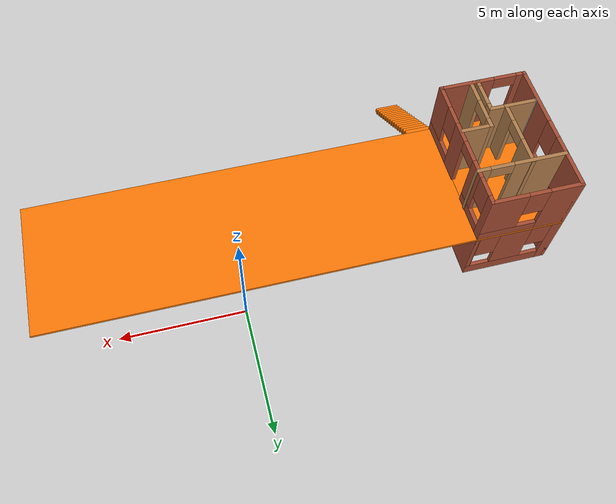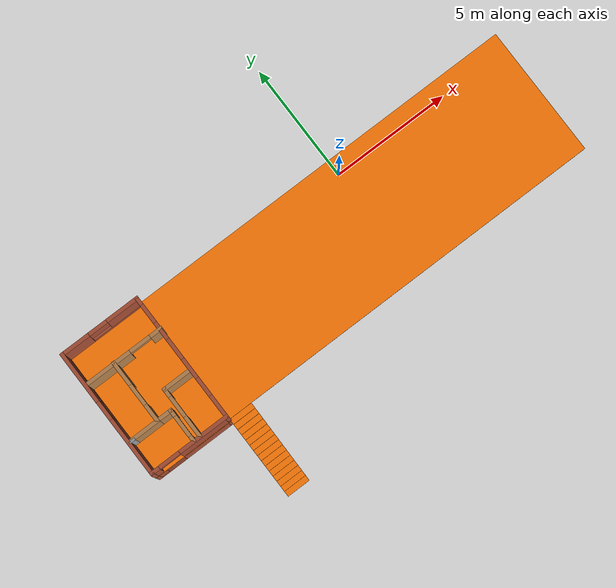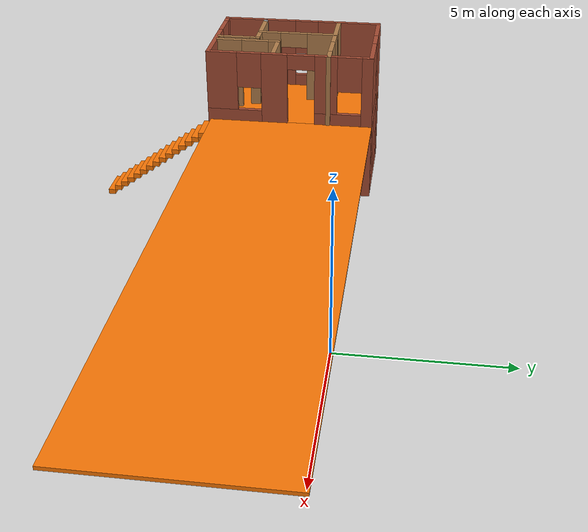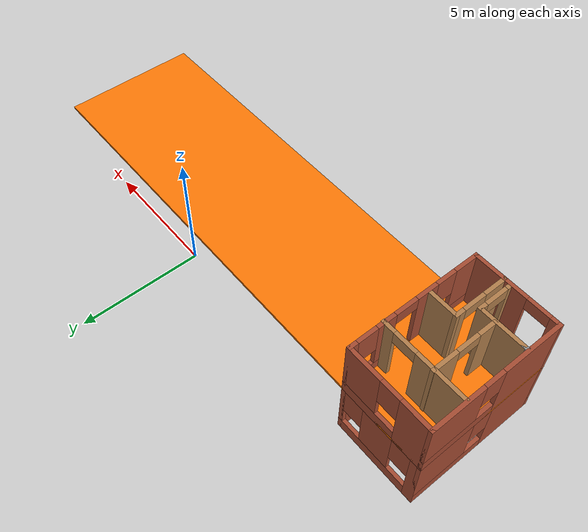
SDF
<sdf version="1.6">
 <model name="Building">
  <pose>-0.047811 -4.11763 0 0 -0 0</pose>
  <link name="Floor_1">
   <pose>-0 1.73959 2.5 0 -0 0</pose>
   <visual name="Floor_1_Visual_0">
    <pose>-10.5996 0 0.05 0 -0 0</pose>
    <geometry><box><size>3.457 5.5163 0.1</size></box></geometry>
    <material>
     <script><uri>file://media/materials/scripts/gazebo.material</uri><name>Gazebo/Grey</name></script>
     <ambient>0.996078 0.47451 0.0196078 1</ambient>
    </material>
    <meta><layer>1</layer></meta>
   </visual>
   <collision name="Floor_1_Collision_0">
    <geometry><box><size>3.457 5.5163 0.1</size></box></geometry>
    <pose>-10.5996 0 0.05 0 -0 0</pose>
   </collision>
   <visual name="Floor_1_Visual_1">
    <pose>-0.590304 0.045102 0.05 0 -0 0</pose>
    <geometry><box><size>16.5615 5.4261 0.1</size></box></geometry>
    <material>
     <script><uri>file://media/materials/scripts/gazebo.material</uri><name>Gazebo/Grey</name></script>
     <ambient>0.996078 0.47451 0.0196078 1</ambient>
    </material>
    <meta><layer>1</layer></meta>
   </visual>
   <collision name="Floor_1_Collision_1">
    <geometry><box><size>16.5615 5.4261 0.1</size></box></geometry>
    <pose>-0.590304 0.045102 0.05 0 -0 0</pose>
   </collision>
  </link>
  <link name="Stairs_1">
   <visual name="Stairs_1_Visual_0">
    <pose>-8.37106 -4.31169 0.083333 0 -0 -3.14159</pose>
    <geometry><box><size>1 0.233333 0.166667</size></box></geometry>
    <material>
     <script><uri>file://media/materials/scripts/gazebo.material</uri><name>Gazebo/Grey</name></script>
     <ambient>0.996078 0.47451 0.0196078 1</ambient>
    </material>
    <meta><layer>0</layer></meta>
   </visual>
   <collision name="Stairs_1_Collision_0">
    <geometry><box><size>1 0.233333 0.166667</size></box></geometry>
    <pose>-8.37106 -4.31169 0.083333 0 -0 -3.14159</pose>
   </collision>
   <visual name="Stairs_1_Visual_1">
    <pose>-8.37106 -4.07835 0.25 0 -0 -3.14159</pose>
    <geometry><box><size>1 0.233333 0.166667</size></box></geometry>
    <material>
     <script><uri>file://media/materials/scripts/gazebo.material</uri><name>Gazebo/Grey</name></script>
     <ambient>0.996078 0.47451 0.0196078 1</ambient>
    </material>
    <meta><layer>0</layer></meta>
   </visual>
   <collision name="Stairs_1_Collision_1">
    <geometry><box><size>1 0.233333 0.166667</size></box></geometry>
    <pose>-8.37106 -4.07835 0.25 0 -0 -3.14159</pose>
   </collision>
   <visual name="Stairs_1_Visual_2">
    <pose>-8.37106 -3.84502 0.416667 0 -0 -3.14159</pose>
    <geometry><box><size>1 0.233333 0.166667</size></box></geometry>
    <material>
     <script><uri>file://media/materials/scripts/gazebo.material</uri><name>Gazebo/Grey</name></script>
     <ambient>0.996078 0.47451 0.0196078 1</ambient>
    </material>
    <meta><layer>0</layer></meta>
   </visual>
   <collision name="Stairs_1_Collision_2">
    <geometry><box><size>1 0.233333 0.166667</size></box></geometry>
    <pose>-8.37106 -3.84502 0.416667 0 -0 -3.14159</pose>
   </collision>
   <visual name="Stairs_1_Visual_3">
    <pose>-8.37106 -3.61169 0.583333 0 -0 -3.14159</pose>
    <geometry><box><size>1 0.233333 0.166667</size></box></geometry>
    <material>
     <script><uri>file://media/materials/scripts/gazebo.material</uri><name>Gazebo/Grey</name></script>
     <ambient>0.996078 0.47451 0.0196078 1</ambient>
    </material>
    <meta><layer>0</layer></meta>
   </visual>
   <collision name="Stairs_1_Collision_3">
    <geometry><box><size>1 0.233333 0.166667</size></box></geometry>
    <pose>-8.37106 -3.61169 0.583333 0 -0 -3.14159</pose>
   </collision>
   <visual name="Stairs_1_Visual_4">
    <pose>-8.37106 -3.37835 0.75 0 -0 -3.14159</pose>
    <geometry><box><size>1 0.233333 0.166667</size></box></geometry>
    <material>
     <script><uri>file://media/materials/scripts/gazebo.material</uri><name>Gazebo/Grey</name></script>
     <ambient>0.996078 0.47451 0.0196078 1</ambient>
    </material>
    <meta><layer>0</layer></meta>
   </visual>
   <collision name="Stairs_1_Collision_4">
    <geometry><box><size>1 0.233333 0.166667</size></box></geometry>
    <pose>-8.37106 -3.37835 0.75 0 -0 -3.14159</pose>
   </collision>
   <visual name="Stairs_1_Visual_5">
    <pose>-8.37106 -3.14502 0.916667 0 -0 -3.14159</pose>
    <geometry><box><size>1 0.233333 0.166667</size></box></geometry>
    <material>
     <script><uri>file://media/materials/scripts/gazebo.material</uri><name>Gazebo/Grey</name></script>
     <ambient>0.996078 0.47451 0.0196078 1</ambient>
    </material>
    <meta><layer>0</layer></meta>
   </visual>
   <collision name="Stairs_1_Collision_5">
    <geometry><box><size>1 0.233333 0.166667</size></box></geometry>
    <pose>-8.37106 -3.14502 0.916667 0 -0 -3.14159</pose>
   </collision>
   <visual name="Stairs_1_Visual_6">
    <pose>-8.37106 -2.91169 1.08333 0 -0 -3.14159</pose>
    <geometry><box><size>1 0.233333 0.166667</size></box></geometry>
    <material>
     <script><uri>file://media/materials/scripts/gazebo.material</uri><name>Gazebo/Grey</name></script>
     <ambient>0.996078 0.47451 0.0196078 1</ambient>
    </material>
    <meta><layer>0</layer></meta>
   </visual>
   <collision name="Stairs_1_Collision_6">
    <geometry><box><size>1 0.233333 0.166667</size></box></geometry>
    <pose>-8.37106 -2.91169 1.08333 0 -0 -3.14159</pose>
   </collision>
   <visual name="Stairs_1_Visual_7">
    <pose>-8.37106 -2.67835 1.25 0 -0 -3.14159</pose>
    <geometry><box><size>1 0.233333 0.166667</size></box></geometry>
    <material>
     <script><uri>file://media/materials/scripts/gazebo.material</uri><name>Gazebo/Grey</name></script>
     <ambient>0.996078 0.47451 0.0196078 1</ambient>
    </material>
    <meta><layer>0</layer></meta>
   </visual>
   <collision name="Stairs_1_Collision_7">
    <geometry><box><size>1 0.233333 0.166667</size></box></geometry>
    <pose>-8.37106 -2.67835 1.25 0 -0 -3.14159</pose>
   </collision>
   <visual name="Stairs_1_Visual_8">
    <pose>-8.37106 -2.44502 1.41667 0 -0 -3.14159</pose>
    <geometry><box><size>1 0.233333 0.166667</size></box></geometry>
    <material>
     <script><uri>file://media/materials/scripts/gazebo.material</uri><name>Gazebo/Grey</name></script>
     <ambient>0.996078 0.47451 0.0196078 1</ambient>
    </material>
    <meta><layer>0</layer></meta>
   </visual>
   <collision name="Stairs_1_Collision_8">
    <geometry><box><size>1 0.233333 0.166667</size></box></geometry>
    <pose>-8.37106 -2.44502 1.41667 0 -0 -3.14159</pose>
   </collision>
   <visual name="Stairs_1_Visual_9">
    <pose>-8.37106 -2.21169 1.58333 0 -0 -3.14159</pose>
    <geometry><box><size>1 0.233333 0.166667</size></box></geometry>
    <material>
     <script><uri>file://media/materials/scripts/gazebo.material</uri><name>Gazebo/Grey</name></script>
     <ambient>0.996078 0.47451 0.0196078 1</ambient>
    </material>
    <meta><layer>0</layer></meta>
   </visual>
   <collision name="Stairs_1_Collision_9">
    <geometry><box><size>1 0.233333 0.166667</size></box></geometry>
    <pose>-8.37106 -2.21169 1.58333 0 -0 -3.14159</pose>
   </collision>
   <visual name="Stairs_1_Visual_10">
    <pose>-8.37106 -1.97835 1.75 0 -0 -3.14159</pose>
    <geometry><box><size>1 0.233333 0.166667</size></box></geometry>
    <material>
     <script><uri>file://media/materials/scripts/gazebo.material</uri><name>Gazebo/Grey</name></script>
     <ambient>0.996078 0.47451 0.0196078 1</ambient>
    </material>
    <meta><layer>0</layer></meta>
   </visual>
   <collision name="Stairs_1_Collision_10">
    <geometry><box><size>1 0.233333 0.166667</size></box></geometry>
    <pose>-8.37106 -1.97835 1.75 0 -0 -3.14159</pose>
   </collision>
   <visual name="Stairs_1_Visual_11">
    <pose>-8.37106 -1.74502 1.91667 0 -0 -3.14159</pose>
    <geometry><box><size>1 0.233333 0.166667</size></box></geometry>
    <material>
     <script><uri>file://media/materials/scripts/gazebo.material</uri><name>Gazebo/Grey</name></script>
     <ambient>0.996078 0.47451 0.0196078 1</ambient>
    </material>
    <meta><layer>0</layer></meta>
   </visual>
   <collision name="Stairs_1_Collision_11">
    <geometry><box><size>1 0.233333 0.166667</size></box></geometry>
    <pose>-8.37106 -1.74502 1.91667 0 -0 -3.14159</pose>
   </collision>
   <visual name="Stairs_1_Visual_12">
    <pose>-8.37106 -1.51169 2.08333 0 -0 -3.14159</pose>
    <geometry><box><size>1 0.233333 0.166667</size></box></geometry>
    <material>
     <script><uri>file://media/materials/scripts/gazebo.material</uri><name>Gazebo/Grey</name></script>
     <ambient>0.996078 0.47451 0.0196078 1</ambient>
    </material>
    <meta><layer>0</layer></meta>
   </visual>
   <collision name="Stairs_1_Collision_12">
    <geometry><box><size>1 0.233333 0.166667</size></box></geometry>
    <pose>-8.37106 -1.51169 2.08333 0 -0 -3.14159</pose>
   </collision>
   <visual name="Stairs_1_Visual_13">
    <pose>-8.37106 -1.27835 2.25 0 -0 -3.14159</pose>
    <geometry><box><size>1 0.233333 0.166667</size></box></geometry>
    <material>
     <script><uri>file://media/materials/scripts/gazebo.material</uri><name>Gazebo/Grey</name></script>
     <ambient>0.996078 0.47451 0.0196078 1</ambient>
    </material>
    <meta><layer>0</layer></meta>
   </visual>
   <collision name="Stairs_1_Collision_13">
    <geometry><box><size>1 0.233333 0.166667</size></box></geometry>
    <pose>-8.37106 -1.27835 2.25 0 -0 -3.14159</pose>
   </collision>
   <visual name="Stairs_1_Visual_14">
    <pose>-8.37106 -1.04502 2.41667 0 -0 -3.14159</pose>
    <geometry><box><size>1 0.233333 0.166667</size></box></geometry>
    <material>
     <script><uri>file://media/materials/scripts/gazebo.material</uri><name>Gazebo/Grey</name></script>
     <ambient>0.996078 0.47451 0.0196078 1</ambient>
    </material>
    <meta><layer>0</layer></meta>
   </visual>
   <collision name="Stairs_1_Collision_14">
    <geometry><box><size>1 0.233333 0.166667</size></box></geometry>
    <pose>-8.37106 -1.04502 2.41667 0 -0 -3.14159</pose>
   </collision>
  </link>
  <link name="Wall_12">
   <pose>-10.5549 3.03491 0 0 -0 3.14159</pose>
   <visual name="Wall_12_Visual_0">
    <pose>-1.28984 0 1.25 0 -0 0</pose>
    <geometry><box><size>0.920315 0.15 2.5</size></box></geometry>
    <material>
     <script><uri>file://media/materials/scripts/gazebo.material</uri><name>Gazebo/Wood</name></script>
     <ambient>1 1 1 1</ambient>
    </material>
    <meta><layer>0</layer></meta>
   </visual>
   <collision name="Wall_12_Collision_0">
    <geometry><box><size>0.920315 0.15 2.5</size></box></geometry>
    <pose>-1.28984 0 1.25 0 -0 0</pose>
   </collision>
   <visual name="Wall_12_Visual_1">
    <pose>0.910157 0 1.25 0 -0 0</pose>
    <geometry><box><size>1.67969 0.15 2.5</size></box></geometry>
    <material>
     <script><uri>file://media/materials/scripts/gazebo.material</uri><name>Gazebo/Wood</name></script>
     <ambient>1 1 1 1</ambient>
    </material>
    <meta><layer>0</layer></meta>
   </visual>
   <collision name="Wall_12_Collision_1">
    <geometry><box><size>1.67969 0.15 2.5</size></box></geometry>
    <pose>0.910157 0 1.25 0 -0 0</pose>
   </collision>
   <visual name="Wall_12_Visual_2">
    <pose>-0.379685 0 2.25 0 -0 0</pose>
    <geometry><box><size>0.9 0.15 0.5</size></box></geometry>
    <material>
     <script><uri>file://media/materials/scripts/gazebo.material</uri><name>Gazebo/Wood</name></script>
     <ambient>1 1 1 1</ambient>
    </material>
    <meta><layer>0</layer></meta>
   </visual>
   <collision name="Wall_12_Collision_2">
    <geometry><box><size>0.9 0.15 0.5</size></box></geometry>
    <pose>-0.379685 0 2.25 0 -0 0</pose>
   </collision>
  </link>
  <link name="Wall_14">
   <pose>-10.9617 1.75804 0 0 -0 -1.5708</pose>
   <visual name="Wall_14_Visual_0">
    <pose>-0.914843 0 1.25 0 -0 0</pose>
    <geometry><box><size>0.920314 0.15 2.5</size></box></geometry>
    <material>
     <script><uri>file://media/materials/scripts/gazebo.material</uri><name>Gazebo/Wood</name></script>
     <ambient>1 1 1 1</ambient>
    </material>
    <meta><layer>0</layer></meta>
   </visual>
   <collision name="Wall_14_Collision_0">
    <geometry><box><size>0.920314 0.15 2.5</size></box></geometry>
    <pose>-0.914843 0 1.25 0 -0 0</pose>
   </collision>
   <visual name="Wall_14_Visual_1">
    <pose>0.910157 0 1.25 0 -0 0</pose>
    <geometry><box><size>0.929686 0.15 2.5</size></box></geometry>
    <material>
     <script><uri>file://media/materials/scripts/gazebo.material</uri><name>Gazebo/Wood</name></script>
     <ambient>1 1 1 1</ambient>
    </material>
    <meta><layer>0</layer></meta>
   </visual>
   <collision name="Wall_14_Collision_1">
    <geometry><box><size>0.929686 0.15 2.5</size></box></geometry>
    <pose>0.910157 0 1.25 0 -0 0</pose>
   </collision>
   <visual name="Wall_14_Visual_2">
    <pose>-0.004686 0 2.25 0 -0 0</pose>
    <geometry><box><size>0.9 0.15 0.5</size></box></geometry>
    <material>
     <script><uri>file://media/materials/scripts/gazebo.material</uri><name>Gazebo/Wood</name></script>
     <ambient>1 1 1 1</ambient>
    </material>
    <meta><layer>0</layer></meta>
   </visual>
   <collision name="Wall_14_Collision_2">
    <geometry><box><size>0.9 0.15 0.5</size></box></geometry>
    <pose>-0.004686 0 2.25 0 -0 0</pose>
   </collision>
  </link>
  <link name="Wall_15">
   <collision name="Wall_15_Collision">
    <geometry><box><size>1.25 0.15 2.5</size></box></geometry>
    <pose>0 0 1.25 0 -0 0</pose>
   </collision>
   <visual name="Wall_15_Visual">
    <pose>0 0 1.25 0 -0 0</pose>
    <geometry><box><size>1.25 0.15 2.5</size></box></geometry>
    <material>
     <script><uri>file://media/materials/scripts/gazebo.material</uri><name>Gazebo/Wood</name></script>
     <ambient>1 1 1 1</ambient>
    </material>
    <meta><layer>0</layer></meta>
   </visual>
   <pose>-11.5117 0.458038 0 0 -0 3.14159</pose>
  </link>
  <link name="Wall_16">
   <collision name="Wall_16_Collision">
    <geometry><box><size>0.25 0.15 2.5</size></box></geometry>
    <pose>0 0 1.25 0 -0 0</pose>
   </collision>
   <visual name="Wall_16_Visual">
    <pose>0 0 1.25 0 -0 0</pose>
    <geometry><box><size>0.25 0.15 2.5</size></box></geometry>
    <material>
     <script><uri>file://media/materials/scripts/gazebo.material</uri><name>Gazebo/Wood</name></script>
     <ambient>1 1 1 1</ambient>
    </material>
    <meta><layer>0</layer></meta>
   </visual>
   <pose>-12.1117 0.458038 0 0 -0 3.14159</pose>
  </link>
  <link name="Wall_18">
   <collision name="Wall_18_Collision">
    <geometry><box><size>0.75 0.15 2.5</size></box></geometry>
    <pose>0 0 1.25 0 -0 0</pose>
   </collision>
   <visual name="Wall_18_Visual">
    <pose>0 0 1.25 0 -0 0</pose>
    <geometry><box><size>0.75 0.15 2.5</size></box></geometry>
    <material>
     <script><uri>file://media/materials/scripts/gazebo.material</uri><name>Gazebo/Wood</name></script>
     <ambient>1 1 1 1</ambient>
    </material>
    <meta><layer>0</layer></meta>
   </visual>
   <pose>-10.6617 0.458038 0 0 -0 0</pose>
  </link>
  <link name="Wall_19">
   <pose>-10.3617 -0.216962 0 0 -0 -1.5708</pose>
   <visual name="Wall_19_Visual_0">
    <pose>-0.606792 0 1.25 0 -0 0</pose>
    <geometry><box><size>0.286415 0.15 2.5</size></box></geometry>
    <material>
     <script><uri>file://media/materials/scripts/gazebo.material</uri><name>Gazebo/Wood</name></script>
     <ambient>1 1 1 1</ambient>
    </material>
    <meta><layer>0</layer></meta>
   </visual>
   <collision name="Wall_19_Collision_0">
    <geometry><box><size>0.286415 0.15 2.5</size></box></geometry>
    <pose>-0.606792 0 1.25 0 -0 0</pose>
   </collision>
   <visual name="Wall_19_Visual_1">
    <pose>0.593208 0 1.25 0 -0 0</pose>
    <geometry><box><size>0.313585 0.15 2.5</size></box></geometry>
    <material>
     <script><uri>file://media/materials/scripts/gazebo.material</uri><name>Gazebo/Wood</name></script>
     <ambient>1 1 1 1</ambient>
    </material>
    <meta><layer>0</layer></meta>
   </visual>
   <collision name="Wall_19_Collision_1">
    <geometry><box><size>0.313585 0.15 2.5</size></box></geometry>
    <pose>0.593208 0 1.25 0 -0 0</pose>
   </collision>
   <visual name="Wall_19_Visual_2">
    <pose>-0.013585 0 2.25 0 -0 0</pose>
    <geometry><box><size>0.9 0.15 0.5</size></box></geometry>
    <material>
     <script><uri>file://media/materials/scripts/gazebo.material</uri><name>Gazebo/Wood</name></script>
     <ambient>1 1 1 1</ambient>
    </material>
    <meta><layer>0</layer></meta>
   </visual>
   <collision name="Wall_19_Collision_2">
    <geometry><box><size>0.9 0.15 0.5</size></box></geometry>
    <pose>-0.013585 0 2.25 0 -0 0</pose>
   </collision>
  </link>
  <link name="Wall_21">
   <pose>-10.0827 0.152704 0 0 -0 1.5708</pose>
   <visual name="Wall_21_Visual_0">
    <pose>-0.618582 0 1.25 0 -0 0</pose>
    <geometry><box><size>1.01284 0.15 2.5</size></box></geometry>
    <material>
     <script><uri>file://media/materials/scripts/gazebo.material</uri><name>Gazebo/Wood</name></script>
     <ambient>1 1 1 1</ambient>
    </material>
    <meta><layer>0</layer></meta>
   </visual>
   <collision name="Wall_21_Collision_0">
    <geometry><box><size>1.01284 0.15 2.5</size></box></geometry>
    <pose>-0.618582 0 1.25 0 -0 0</pose>
   </collision>
   <visual name="Wall_21_Visual_1">
    <pose>0.956418 0 1.25 0 -0 0</pose>
    <geometry><box><size>0.337163 0.15 2.5</size></box></geometry>
    <material>
     <script><uri>file://media/materials/scripts/gazebo.material</uri><name>Gazebo/Wood</name></script>
     <ambient>1 1 1 1</ambient>
    </material>
    <meta><layer>0</layer></meta>
   </visual>
   <collision name="Wall_21_Collision_1">
    <geometry><box><size>0.337163 0.15 2.5</size></box></geometry>
    <pose>0.956418 0 1.25 0 -0 0</pose>
   </collision>
   <visual name="Wall_21_Visual_2">
    <pose>0.337837 0 2.25 0 -0 0</pose>
    <geometry><box><size>0.9 0.15 0.5</size></box></geometry>
    <material>
     <script><uri>file://media/materials/scripts/gazebo.material</uri><name>Gazebo/Wood</name></script>
     <ambient>1 1 1 1</ambient>
    </material>
    <meta><layer>0</layer></meta>
   </visual>
   <collision name="Wall_21_Collision_2">
    <geometry><box><size>0.9 0.15 0.5</size></box></geometry>
    <pose>0.337837 0 2.25 0 -0 0</pose>
   </collision>
  </link>
  <link name="Wall_22">
   <collision name="Wall_22_Collision">
    <geometry><box><size>1.25 0.15 2.5</size></box></geometry>
    <pose>0 0 1.25 0 -0 0</pose>
   </collision>
   <visual name="Wall_22_Visual">
    <pose>0 0 1.25 0 -0 0</pose>
    <geometry><box><size>1.25 0.15 2.5</size></box></geometry>
    <material>
     <script><uri>file://media/materials/scripts/gazebo.material</uri><name>Gazebo/Wood</name></script>
     <ambient>1 1 1 1</ambient>
    </material>
    <meta><layer>0</layer></meta>
   </visual>
   <pose>-9.53273 1.2027 0 0 -0 0</pose>
  </link>
  <link name="Wall_6">
   <pose>-8.90307 1.74774 0 0 -0 -1.5708</pose>
   <visual name="Wall_6_Visual_0">
    <pose>-1.70001 0 1.25 0 -0 0</pose>
    <geometry><box><size>2.09998 0.15 2.5</size></box></geometry>
    <material>
     <script><uri>file://media/materials/scripts/gazebo.material</uri><name>Gazebo/Bricks</name></script>
     <ambient>1 1 1 1</ambient>
    </material>
    <meta><layer>0</layer></meta>
   </visual>
   <collision name="Wall_6_Collision_0">
    <geometry><box><size>2.09998 0.15 2.5</size></box></geometry>
    <pose>-1.70001 0 1.25 0 -0 0</pose>
   </collision>
   <visual name="Wall_6_Visual_1">
    <pose>0.761765 0 1.25 0 -0 0</pose>
    <geometry><box><size>1.02358 0.15 2.5</size></box></geometry>
    <material>
     <script><uri>file://media/materials/scripts/gazebo.material</uri><name>Gazebo/Bricks</name></script>
     <ambient>1 1 1 1</ambient>
    </material>
    <meta><layer>0</layer></meta>
   </visual>
   <collision name="Wall_6_Collision_1">
    <geometry><box><size>1.02358 0.15 2.5</size></box></geometry>
    <pose>0.761765 0 1.25 0 -0 0</pose>
   </collision>
   <visual name="Wall_6_Visual_2">
    <pose>2.01178 0 0.25 0 -0 0</pose>
    <geometry><box><size>1.47645 0.15 0.5</size></box></geometry>
    <material>
     <script><uri>file://media/materials/scripts/gazebo.material</uri><name>Gazebo/Bricks</name></script>
     <ambient>1 1 1 1</ambient>
    </material>
    <meta><layer>0</layer></meta>
   </visual>
   <collision name="Wall_6_Collision_2">
    <geometry><box><size>1.47645 0.15 0.5</size></box></geometry>
    <pose>2.01178 0 0.25 0 -0 0</pose>
   </collision>
   <visual name="Wall_6_Visual_3">
    <pose>2.41178 0 1.5 0 -0 0</pose>
    <geometry><box><size>0.676446 0.15 2</size></box></geometry>
    <material>
     <script><uri>file://media/materials/scripts/gazebo.material</uri><name>Gazebo/Bricks</name></script>
     <ambient>1 1 1 1</ambient>
    </material>
    <meta><layer>0</layer></meta>
   </visual>
   <collision name="Wall_6_Collision_3">
    <geometry><box><size>0.676446 0.15 2</size></box></geometry>
    <pose>2.41178 0 1.5 0 -0 0</pose>
   </collision>
   <visual name="Wall_6_Visual_4">
    <pose>1.67355 0 1.9 0 -0 0</pose>
    <geometry><box><size>0.8 0.15 1.2</size></box></geometry>
    <material>
     <script><uri>file://media/materials/scripts/gazebo.material</uri><name>Gazebo/Bricks</name></script>
     <ambient>1 1 1 1</ambient>
    </material>
    <meta><layer>0</layer></meta>
   </visual>
   <collision name="Wall_6_Collision_4">
    <geometry><box><size>0.8 0.15 1.2</size></box></geometry>
    <pose>1.67355 0 1.9 0 -0 0</pose>
   </collision>
   <visual name="Wall_6_Visual_5">
    <pose>-0.200025 0 2.25 0 -0 0</pose>
    <geometry><box><size>0.9 0.15 0.5</size></box></geometry>
    <material>
     <script><uri>file://media/materials/scripts/gazebo.material</uri><name>Gazebo/Bricks</name></script>
     <ambient>1 1 1 1</ambient>
    </material>
    <meta><layer>0</layer></meta>
   </visual>
   <collision name="Wall_6_Collision_5">
    <geometry><box><size>0.9 0.15 0.5</size></box></geometry>
    <pose>-0.200025 0 2.25 0 -0 0</pose>
   </collision>
  </link>
  <link name="Wall_7">
   <pose>-10.5781 -0.927256 0 0 -0 3.14159</pose>
   <visual name="Wall_7_Visual_0">
    <pose>-0.651882 0 1.25 0 -0 0</pose>
    <geometry><box><size>2.19624 0.15 2.5</size></box></geometry>
    <material>
     <script><uri>file://media/materials/scripts/gazebo.material</uri><name>Gazebo/Bricks</name></script>
     <ambient>1 1 1 1</ambient>
    </material>
    <meta><layer>0</layer></meta>
   </visual>
   <collision name="Wall_7_Collision_0">
    <geometry><box><size>2.19624 0.15 2.5</size></box></geometry>
    <pose>-0.651882 0 1.25 0 -0 0</pose>
   </collision>
   <visual name="Wall_7_Visual_1">
    <pose>1.09812 0 0.25 0 -0 0</pose>
    <geometry><box><size>1.30376 0.15 0.5</size></box></geometry>
    <material>
     <script><uri>file://media/materials/scripts/gazebo.material</uri><name>Gazebo/Bricks</name></script>
     <ambient>1 1 1 1</ambient>
    </material>
    <meta><layer>0</layer></meta>
   </visual>
   <collision name="Wall_7_Collision_1">
    <geometry><box><size>1.30376 0.15 0.5</size></box></geometry>
    <pose>1.09812 0 0.25 0 -0 0</pose>
   </collision>
   <visual name="Wall_7_Visual_2">
    <pose>1.49812 0 1.5 0 -0 0</pose>
    <geometry><box><size>0.503764 0.15 2</size></box></geometry>
    <material>
     <script><uri>file://media/materials/scripts/gazebo.material</uri><name>Gazebo/Bricks</name></script>
     <ambient>1 1 1 1</ambient>
    </material>
    <meta><layer>0</layer></meta>
   </visual>
   <collision name="Wall_7_Collision_2">
    <geometry><box><size>0.503764 0.15 2</size></box></geometry>
    <pose>1.49812 0 1.5 0 -0 0</pose>
   </collision>
   <visual name="Wall_7_Visual_3">
    <pose>0.846236 0 1.9 0 -0 0</pose>
    <geometry><box><size>0.8 0.15 1.2</size></box></geometry>
    <material>
     <script><uri>file://media/materials/scripts/gazebo.material</uri><name>Gazebo/Bricks</name></script>
     <ambient>1 1 1 1</ambient>
    </material>
    <meta><layer>0</layer></meta>
   </visual>
   <collision name="Wall_7_Collision_3">
    <geometry><box><size>0.8 0.15 1.2</size></box></geometry>
    <pose>0.846236 0 1.9 0 -0 0</pose>
   </collision>
  </link>
  <link name="Wall_71">
   <pose>-8.90307 1.74774 2.5 0 -0 -1.5708</pose>
   <visual name="Wall_71_Visual_0">
    <pose>-2.56554 0 1.25 0 -0 0</pose>
    <geometry><box><size>0.368918 0.15 2.5</size></box></geometry>
    <material>
     <script><uri>file://media/materials/scripts/gazebo.material</uri><name>Gazebo/Bricks</name></script>
     <ambient>1 1 1 1</ambient>
    </material>
    <meta><layer>1</layer></meta>
   </visual>
   <collision name="Wall_71_Collision_0">
    <geometry><box><size>0.368918 0.15 2.5</size></box></geometry>
    <pose>-2.56554 0 1.25 0 -0 0</pose>
   </collision>
   <visual name="Wall_71_Visual_1">
    <pose>0.495763 0 1.25 0 -0 0</pose>
    <geometry><box><size>0.861665 0.15 2.5</size></box></geometry>
    <material>
     <script><uri>file://media/materials/scripts/gazebo.material</uri><name>Gazebo/Bricks</name></script>
     <ambient>1 1 1 1</ambient>
    </material>
    <meta><layer>1</layer></meta>
   </visual>
   <collision name="Wall_71_Collision_1">
    <geometry><box><size>0.861665 0.15 2.5</size></box></geometry>
    <pose>0.495763 0 1.25 0 -0 0</pose>
   </collision>
   <visual name="Wall_71_Visual_2">
    <pose>-1.60808 0 0.25 0 -0 0</pose>
    <geometry><box><size>1.54601 0.15 0.5</size></box></geometry>
    <material>
     <script><uri>file://media/materials/scripts/gazebo.material</uri><name>Gazebo/Bricks</name></script>
     <ambient>1 1 1 1</ambient>
    </material>
    <meta><layer>1</layer></meta>
   </visual>
   <collision name="Wall_71_Collision_2">
    <geometry><box><size>1.54601 0.15 0.5</size></box></geometry>
    <pose>-1.60808 0 0.25 0 -0 0</pose>
   </collision>
   <visual name="Wall_71_Visual_3">
    <pose>1.8383 0 0.25 0 -0 0</pose>
    <geometry><box><size>1.8234 0.15 0.5</size></box></geometry>
    <material>
     <script><uri>file://media/materials/scripts/gazebo.material</uri><name>Gazebo/Bricks</name></script>
     <ambient>1 1 1 1</ambient>
    </material>
    <meta><layer>1</layer></meta>
   </visual>
   <collision name="Wall_71_Collision_3">
    <geometry><box><size>1.8234 0.15 0.5</size></box></geometry>
    <pose>1.8383 0 0.25 0 -0 0</pose>
   </collision>
   <visual name="Wall_71_Visual_4">
    <pose>-1.20808 0 1.5 0 -0 0</pose>
    <geometry><box><size>0.746012 0.15 2</size></box></geometry>
    <material>
     <script><uri>file://media/materials/scripts/gazebo.material</uri><name>Gazebo/Bricks</name></script>
     <ambient>1 1 1 1</ambient>
    </material>
    <meta><layer>1</layer></meta>
   </visual>
   <collision name="Wall_71_Collision_4">
    <geometry><box><size>0.746012 0.15 2</size></box></geometry>
    <pose>-1.20808 0 1.5 0 -0 0</pose>
   </collision>
   <visual name="Wall_71_Visual_5">
    <pose>-1.20808 0 1.5 0 -0 0</pose>
    <geometry><box><size>0.746012 0.15 2</size></box></geometry>
    <material>
     <script><uri>file://media/materials/scripts/gazebo.material</uri><name>Gazebo/Bricks</name></script>
     <ambient>1 1 1 1</ambient>
    </material>
    <meta><layer>1</layer></meta>
   </visual>
   <collision name="Wall_71_Collision_5">
    <geometry><box><size>0.746012 0.15 2</size></box></geometry>
    <pose>-1.20808 0 1.5 0 -0 0</pose>
   </collision>
   <visual name="Wall_71_Visual_6">
    <pose>2.2383 0 1.5 0 -0 0</pose>
    <geometry><box><size>1.0234 0.15 2</size></box></geometry>
    <material>
     <script><uri>file://media/materials/scripts/gazebo.material</uri><name>Gazebo/Bricks</name></script>
     <ambient>1 1 1 1</ambient>
    </material>
    <meta><layer>1</layer></meta>
   </visual>
   <collision name="Wall_71_Collision_6">
    <geometry><box><size>1.0234 0.15 2</size></box></geometry>
    <pose>2.2383 0 1.5 0 -0 0</pose>
   </collision>
   <visual name="Wall_71_Visual_7">
    <pose>-1.98108 0 1.9 0 -0 0</pose>
    <geometry><box><size>0.8 0.15 1.2</size></box></geometry>
    <material>
     <script><uri>file://media/materials/scripts/gazebo.material</uri><name>Gazebo/Bricks</name></script>
     <ambient>1 1 1 1</ambient>
    </material>
    <meta><layer>1</layer></meta>
   </visual>
   <collision name="Wall_71_Collision_7">
    <geometry><box><size>0.8 0.15 1.2</size></box></geometry>
    <pose>-1.98108 0 1.9 0 -0 0</pose>
   </collision>
   <visual name="Wall_71_Visual_8">
    <pose>1.32659 0 1.9 0 -0 0</pose>
    <geometry><box><size>0.8 0.15 1.2</size></box></geometry>
    <material>
     <script><uri>file://media/materials/scripts/gazebo.material</uri><name>Gazebo/Bricks</name></script>
     <ambient>1 1 1 1</ambient>
    </material>
    <meta><layer>1</layer></meta>
   </visual>
   <collision name="Wall_71_Collision_8">
    <geometry><box><size>0.8 0.15 1.2</size></box></geometry>
    <pose>1.32659 0 1.9 0 -0 0</pose>
   </collision>
   <visual name="Wall_71_Visual_9">
    <pose>-0.38507 0 2.25 0 -0 0</pose>
    <geometry><box><size>0.9 0.15 0.5</size></box></geometry>
    <material>
     <script><uri>file://media/materials/scripts/gazebo.material</uri><name>Gazebo/Bricks</name></script>
     <ambient>1 1 1 1</ambient>
    </material>
    <meta><layer>1</layer></meta>
   </visual>
   <collision name="Wall_71_Collision_9">
    <geometry><box><size>0.9 0.15 0.5</size></box></geometry>
    <pose>-0.38507 0 2.25 0 -0 0</pose>
   </collision>
   <visual name="Wall_71_Visual_10">
    <pose>-0.38507 0 2.25 0 -0 0</pose>
    <geometry><box><size>0.9 0.15 0.5</size></box></geometry>
    <material>
     <script><uri>file://media/materials/scripts/gazebo.material</uri><name>Gazebo/Bricks</name></script>
     <ambient>1 1 1 1</ambient>
    </material>
    <meta><layer>1</layer></meta>
   </visual>
   <collision name="Wall_71_Collision_10">
    <geometry><box><size>0.9 0.15 0.5</size></box></geometry>
    <pose>-0.38507 0 2.25 0 -0 0</pose>
   </collision>
  </link>
  <link name="Wall_72">
   <pose>-10.5781 -0.927256 2.5 0 -0 3.14159</pose>
   <visual name="Wall_72_Visual_0">
    <pose>-0.653751 0 1.25 0 -0 0</pose>
    <geometry><box><size>2.1925 0.15 2.5</size></box></geometry>
    <material>
     <script><uri>file://media/materials/scripts/gazebo.material</uri><name>Gazebo/Bricks</name></script>
     <ambient>1 1 1 1</ambient>
    </material>
    <meta><layer>1</layer></meta>
   </visual>
   <collision name="Wall_72_Collision_0">
    <geometry><box><size>2.1925 0.15 2.5</size></box></geometry>
    <pose>-0.653751 0 1.25 0 -0 0</pose>
   </collision>
   <visual name="Wall_72_Visual_1">
    <pose>1.54625 0 1.25 0 -0 0</pose>
    <geometry><box><size>0.407502 0.15 2.5</size></box></geometry>
    <material>
     <script><uri>file://media/materials/scripts/gazebo.material</uri><name>Gazebo/Bricks</name></script>
     <ambient>1 1 1 1</ambient>
    </material>
    <meta><layer>1</layer></meta>
   </visual>
   <collision name="Wall_72_Collision_1">
    <geometry><box><size>0.407502 0.15 2.5</size></box></geometry>
    <pose>1.54625 0 1.25 0 -0 0</pose>
   </collision>
   <visual name="Wall_72_Visual_2">
    <pose>0.892498 0 2.25 0 -0 0</pose>
    <geometry><box><size>0.9 0.15 0.5</size></box></geometry>
    <material>
     <script><uri>file://media/materials/scripts/gazebo.material</uri><name>Gazebo/Bricks</name></script>
     <ambient>1 1 1 1</ambient>
    </material>
    <meta><layer>1</layer></meta>
   </visual>
   <collision name="Wall_72_Collision_2">
    <geometry><box><size>0.9 0.15 0.5</size></box></geometry>
    <pose>0.892498 0 2.25 0 -0 0</pose>
   </collision>
  </link>
  <link name="Wall_73">
   <pose>-12.2531 1.74774 2.5 0 -0 1.5708</pose>
   <visual name="Wall_73_Visual_0">
    <pose>-1.49812 0 1.25 0 -0 0</pose>
    <geometry><box><size>2.50376 0.15 2.5</size></box></geometry>
    <material>
     <script><uri>file://media/materials/scripts/gazebo.material</uri><name>Gazebo/Bricks</name></script>
     <ambient>1 1 1 1</ambient>
    </material>
    <meta><layer>1</layer></meta>
   </visual>
   <collision name="Wall_73_Collision_0">
    <geometry><box><size>2.50376 0.15 2.5</size></box></geometry>
    <pose>-1.49812 0 1.25 0 -0 0</pose>
   </collision>
   <visual name="Wall_73_Visual_1">
    <pose>1.25188 0 0.25 0 -0 0</pose>
    <geometry><box><size>2.99624 0.15 0.5</size></box></geometry>
    <material>
     <script><uri>file://media/materials/scripts/gazebo.material</uri><name>Gazebo/Bricks</name></script>
     <ambient>1 1 1 1</ambient>
    </material>
    <meta><layer>1</layer></meta>
   </visual>
   <collision name="Wall_73_Collision_1">
    <geometry><box><size>2.99624 0.15 0.5</size></box></geometry>
    <pose>1.25188 0 0.25 0 -0 0</pose>
   </collision>
   <visual name="Wall_73_Visual_2">
    <pose>1.65188 0 1.5 0 -0 0</pose>
    <geometry><box><size>2.19624 0.15 2</size></box></geometry>
    <material>
     <script><uri>file://media/materials/scripts/gazebo.material</uri><name>Gazebo/Bricks</name></script>
     <ambient>1 1 1 1</ambient>
    </material>
    <meta><layer>1</layer></meta>
   </visual>
   <collision name="Wall_73_Collision_2">
    <geometry><box><size>2.19624 0.15 2</size></box></geometry>
    <pose>1.65188 0 1.5 0 -0 0</pose>
   </collision>
   <visual name="Wall_73_Visual_3">
    <pose>0.153764 0 1.9 0 -0 0</pose>
    <geometry><box><size>0.8 0.15 1.2</size></box></geometry>
    <material>
     <script><uri>file://media/materials/scripts/gazebo.material</uri><name>Gazebo/Bricks</name></script>
     <ambient>1 1 1 1</ambient>
    </material>
    <meta><layer>1</layer></meta>
   </visual>
   <collision name="Wall_73_Collision_3">
    <geometry><box><size>0.8 0.15 1.2</size></box></geometry>
    <pose>0.153764 0 1.9 0 -0 0</pose>
   </collision>
  </link>
  <link name="Wall_74">
   <pose>-10.5781 4.42274 2.5 0 -0 0</pose>
   <visual name="Wall_74_Visual_0">
    <pose>-1.11646 0 1.25 0 -0 0</pose>
    <geometry><box><size>1.26707 0.15 2.5</size></box></geometry>
    <material>
     <script><uri>file://media/materials/scripts/gazebo.material</uri><name>Gazebo/Bricks</name></script>
     <ambient>1 1 1 1</ambient>
    </material>
    <meta><layer>1</layer></meta>
   </visual>
   <collision name="Wall_74_Collision_0">
    <geometry><box><size>1.26707 0.15 2.5</size></box></geometry>
    <pose>-1.11646 0 1.25 0 -0 0</pose>
   </collision>
   <visual name="Wall_74_Visual_1">
    <pose>0.633537 0 0.25 0 -0 0</pose>
    <geometry><box><size>2.23293 0.15 0.5</size></box></geometry>
    <material>
     <script><uri>file://media/materials/scripts/gazebo.material</uri><name>Gazebo/Bricks</name></script>
     <ambient>1 1 1 1</ambient>
    </material>
    <meta><layer>1</layer></meta>
   </visual>
   <collision name="Wall_74_Collision_1">
    <geometry><box><size>2.23293 0.15 0.5</size></box></geometry>
    <pose>0.633537 0 0.25 0 -0 0</pose>
   </collision>
   <visual name="Wall_74_Visual_2">
    <pose>1.03354 0 1.5 0 -0 0</pose>
    <geometry><box><size>1.43293 0.15 2</size></box></geometry>
    <material>
     <script><uri>file://media/materials/scripts/gazebo.material</uri><name>Gazebo/Bricks</name></script>
     <ambient>1 1 1 1</ambient>
    </material>
    <meta><layer>1</layer></meta>
   </visual>
   <collision name="Wall_74_Collision_2">
    <geometry><box><size>1.43293 0.15 2</size></box></geometry>
    <pose>1.03354 0 1.5 0 -0 0</pose>
   </collision>
   <visual name="Wall_74_Visual_3">
    <pose>-0.082927 0 1.9 0 -0 0</pose>
    <geometry><box><size>0.8 0.15 1.2</size></box></geometry>
    <material>
     <script><uri>file://media/materials/scripts/gazebo.material</uri><name>Gazebo/Bricks</name></script>
     <ambient>1 1 1 1</ambient>
    </material>
    <meta><layer>1</layer></meta>
   </visual>
   <collision name="Wall_74_Collision_3">
    <geometry><box><size>0.8 0.15 1.2</size></box></geometry>
    <pose>-0.082927 0 1.9 0 -0 0</pose>
   </collision>
  </link>
  <link name="Wall_75">
   <pose>-10.5549 3.03491 2.5 0 -0 3.14159</pose>
   <visual name="Wall_75_Visual_0">
    <pose>-1.47489 0 1.25 0 -0 0</pose>
    <geometry><box><size>0.550224 0.15 2.5</size></box></geometry>
    <material>
     <script><uri>file://media/materials/scripts/gazebo.material</uri><name>Gazebo/Wood</name></script>
     <ambient>1 1 1 1</ambient>
    </material>
    <meta><layer>1</layer></meta>
   </visual>
   <collision name="Wall_75_Collision_0">
    <geometry><box><size>0.550224 0.15 2.5</size></box></geometry>
    <pose>-1.47489 0 1.25 0 -0 0</pose>
   </collision>
   <visual name="Wall_75_Visual_1">
    <pose>0.725112 0 1.25 0 -0 0</pose>
    <geometry><box><size>2.04978 0.15 2.5</size></box></geometry>
    <material>
     <script><uri>file://media/materials/scripts/gazebo.material</uri><name>Gazebo/Wood</name></script>
     <ambient>1 1 1 1</ambient>
    </material>
    <meta><layer>1</layer></meta>
   </visual>
   <collision name="Wall_75_Collision_1">
    <geometry><box><size>2.04978 0.15 2.5</size></box></geometry>
    <pose>0.725112 0 1.25 0 -0 0</pose>
   </collision>
   <visual name="Wall_75_Visual_2">
    <pose>-0.749776 0 2.25 0 -0 0</pose>
    <geometry><box><size>0.9 0.15 0.5</size></box></geometry>
    <material>
     <script><uri>file://media/materials/scripts/gazebo.material</uri><name>Gazebo/Wood</name></script>
     <ambient>1 1 1 1</ambient>
    </material>
    <meta><layer>1</layer></meta>
   </visual>
   <collision name="Wall_75_Collision_2">
    <geometry><box><size>0.9 0.15 0.5</size></box></geometry>
    <pose>-0.749776 0 2.25 0 -0 0</pose>
   </collision>
  </link>
  <link name="Wall_76">
   <pose>-10.9617 1.75804 2.5 0 -0 -1.5708</pose>
   <visual name="Wall_76_Visual_0">
    <pose>-0.845451 0 1.25 0 -0 0</pose>
    <geometry><box><size>1.0591 0.15 2.5</size></box></geometry>
    <material>
     <script><uri>file://media/materials/scripts/gazebo.material</uri><name>Gazebo/Wood</name></script>
     <ambient>1 1 1 1</ambient>
    </material>
    <meta><layer>1</layer></meta>
   </visual>
   <collision name="Wall_76_Collision_0">
    <geometry><box><size>1.0591 0.15 2.5</size></box></geometry>
    <pose>-0.845451 0 1.25 0 -0 0</pose>
   </collision>
   <visual name="Wall_76_Visual_1">
    <pose>0.979549 0 1.25 0 -0 0</pose>
    <geometry><box><size>0.790902 0.15 2.5</size></box></geometry>
    <material>
     <script><uri>file://media/materials/scripts/gazebo.material</uri><name>Gazebo/Wood</name></script>
     <ambient>1 1 1 1</ambient>
    </material>
    <meta><layer>1</layer></meta>
   </visual>
   <collision name="Wall_76_Collision_1">
    <geometry><box><size>0.790902 0.15 2.5</size></box></geometry>
    <pose>0.979549 0 1.25 0 -0 0</pose>
   </collision>
   <visual name="Wall_76_Visual_2">
    <pose>0.134098 0 2.25 0 -0 0</pose>
    <geometry><box><size>0.9 0.15 0.5</size></box></geometry>
    <material>
     <script><uri>file://media/materials/scripts/gazebo.material</uri><name>Gazebo/Wood</name></script>
     <ambient>1 1 1 1</ambient>
    </material>
    <meta><layer>1</layer></meta>
   </visual>
   <collision name="Wall_76_Collision_2">
    <geometry><box><size>0.9 0.15 0.5</size></box></geometry>
    <pose>0.134098 0 2.25 0 -0 0</pose>
   </collision>
  </link>
  <link name="Wall_77">
   <collision name="Wall_77_Collision">
    <geometry><box><size>1.25 0.15 2.5</size></box></geometry>
    <pose>0 0 1.25 0 -0 0</pose>
   </collision>
   <visual name="Wall_77_Visual">
    <pose>0 0 1.25 0 -0 0</pose>
    <geometry><box><size>1.25 0.15 2.5</size></box></geometry>
    <material>
     <script><uri>file://media/materials/scripts/gazebo.material</uri><name>Gazebo/Wood</name></script>
     <ambient>1 1 1 1</ambient>
    </material>
    <meta><layer>1</layer></meta>
   </visual>
   <pose>-11.5117 0.458038 2.5 0 -0 3.14159</pose>
  </link>
  <link name="Wall_78">
   <collision name="Wall_78_Collision">
    <geometry><box><size>0.25 0.15 2.5</size></box></geometry>
    <pose>0 0 1.25 0 -0 0</pose>
   </collision>
   <visual name="Wall_78_Visual">
    <pose>0 0 1.25 0 -0 0</pose>
    <geometry><box><size>0.25 0.15 2.5</size></box></geometry>
    <material>
     <script><uri>file://media/materials/scripts/gazebo.material</uri><name>Gazebo/Grey</name></script>
     <ambient>1 1 1 1</ambient>
    </material>
    <meta><layer>1</layer></meta>
   </visual>
   <pose>-12.1117 0.458038 2.5 0 -0 3.14159</pose>
  </link>
  <link name="Wall_79">
   <collision name="Wall_79_Collision">
    <geometry><box><size>0.75 0.15 2.5</size></box></geometry>
    <pose>0 0 1.25 0 -0 0</pose>
   </collision>
   <visual name="Wall_79_Visual">
    <pose>0 0 1.25 0 -0 0</pose>
    <geometry><box><size>0.75 0.15 2.5</size></box></geometry>
    <material>
     <script><uri>file://media/materials/scripts/gazebo.material</uri><name>Gazebo/Wood</name></script>
     <ambient>1 1 1 1</ambient>
    </material>
    <meta><layer>1</layer></meta>
   </visual>
   <pose>-10.6617 0.458038 2.5 0 -0 0</pose>
  </link>
  <link name="Wall_8">
   <pose>-12.2531 1.74774 0 0 -0 1.5708</pose>
   <visual name="Wall_8_Visual_0">
    <pose>-1.54438 0 1.25 0 -0 0</pose>
    <geometry><box><size>2.41124 0.15 2.5</size></box></geometry>
    <material>
     <script><uri>file://media/materials/scripts/gazebo.material</uri><name>Gazebo/Bricks</name></script>
     <ambient>1 1 1 1</ambient>
    </material>
    <meta><layer>0</layer></meta>
   </visual>
   <collision name="Wall_8_Collision_0">
    <geometry><box><size>2.41124 0.15 2.5</size></box></geometry>
    <pose>-1.54438 0 1.25 0 -0 0</pose>
   </collision>
   <visual name="Wall_8_Visual_1">
    <pose>1.20562 0 0.25 0 -0 0</pose>
    <geometry><box><size>3.08876 0.15 0.5</size></box></geometry>
    <material>
     <script><uri>file://media/materials/scripts/gazebo.material</uri><name>Gazebo/Bricks</name></script>
     <ambient>1 1 1 1</ambient>
    </material>
    <meta><layer>0</layer></meta>
   </visual>
   <collision name="Wall_8_Collision_1">
    <geometry><box><size>3.08876 0.15 0.5</size></box></geometry>
    <pose>1.20562 0 0.25 0 -0 0</pose>
   </collision>
   <visual name="Wall_8_Visual_2">
    <pose>1.60562 0 1.5 0 -0 0</pose>
    <geometry><box><size>2.28876 0.15 2</size></box></geometry>
    <material>
     <script><uri>file://media/materials/scripts/gazebo.material</uri><name>Gazebo/Bricks</name></script>
     <ambient>1 1 1 1</ambient>
    </material>
    <meta><layer>0</layer></meta>
   </visual>
   <collision name="Wall_8_Collision_2">
    <geometry><box><size>2.28876 0.15 2</size></box></geometry>
    <pose>1.60562 0 1.5 0 -0 0</pose>
   </collision>
   <visual name="Wall_8_Visual_3">
    <pose>0.061241 0 1.9 0 -0 0</pose>
    <geometry><box><size>0.8 0.15 1.2</size></box></geometry>
    <material>
     <script><uri>file://media/materials/scripts/gazebo.material</uri><name>Gazebo/Bricks</name></script>
     <ambient>1 1 1 1</ambient>
    </material>
    <meta><layer>0</layer></meta>
   </visual>
   <collision name="Wall_8_Collision_3">
    <geometry><box><size>0.8 0.15 1.2</size></box></geometry>
    <pose>0.061241 0 1.9 0 -0 0</pose>
   </collision>
  </link>
  <link name="Wall_80">
   <pose>-10.3617 -0.216962 2.5 0 -0 -1.5708</pose>
   <visual name="Wall_80_Visual_0">
    <pose>-0.583661 0 1.25 0 -0 0</pose>
    <geometry><box><size>0.332677 0.15 2.5</size></box></geometry>
    <material>
     <script><uri>file://media/materials/scripts/gazebo.material</uri><name>Gazebo/Wood</name></script>
     <ambient>1 1 1 1</ambient>
    </material>
    <meta><layer>1</layer></meta>
   </visual>
   <collision name="Wall_80_Collision_0">
    <geometry><box><size>0.332677 0.15 2.5</size></box></geometry>
    <pose>-0.583661 0 1.25 0 -0 0</pose>
   </collision>
   <visual name="Wall_80_Visual_1">
    <pose>0.616339 0 1.25 0 -0 0</pose>
    <geometry><box><size>0.267323 0.15 2.5</size></box></geometry>
    <material>
     <script><uri>file://media/materials/scripts/gazebo.material</uri><name>Gazebo/Wood</name></script>
     <ambient>1 1 1 1</ambient>
    </material>
    <meta><layer>1</layer></meta>
   </visual>
   <collision name="Wall_80_Collision_1">
    <geometry><box><size>0.267323 0.15 2.5</size></box></geometry>
    <pose>0.616339 0 1.25 0 -0 0</pose>
   </collision>
   <visual name="Wall_80_Visual_2">
    <pose>0.032677 0 2.25 0 -0 0</pose>
    <geometry><box><size>0.9 0.15 0.5</size></box></geometry>
    <material>
     <script><uri>file://media/materials/scripts/gazebo.material</uri><name>Gazebo/Wood</name></script>
     <ambient>1 1 1 1</ambient>
    </material>
    <meta><layer>1</layer></meta>
   </visual>
   <collision name="Wall_80_Collision_2">
    <geometry><box><size>0.9 0.15 0.5</size></box></geometry>
    <pose>0.032677 0 2.25 0 -0 0</pose>
   </collision>
  </link>
  <link name="Wall_81">
   <pose>-10.0827 0.152704 2.5 0 -0 1.5708</pose>
   <visual name="Wall_81_Visual_0">
    <pose>-0.653278 0 1.25 0 -0 0</pose>
    <geometry><box><size>0.943445 0.15 2.5</size></box></geometry>
    <material>
     <script><uri>file://media/materials/scripts/gazebo.material</uri><name>Gazebo/Wood</name></script>
     <ambient>1 1 1 1</ambient>
    </material>
    <meta><layer>1</layer></meta>
   </visual>
   <collision name="Wall_81_Collision_0">
    <geometry><box><size>0.943445 0.15 2.5</size></box></geometry>
    <pose>-0.653278 0 1.25 0 -0 0</pose>
   </collision>
   <visual name="Wall_81_Visual_1">
    <pose>0.921722 0 1.25 0 -0 0</pose>
    <geometry><box><size>0.406555 0.15 2.5</size></box></geometry>
    <material>
     <script><uri>file://media/materials/scripts/gazebo.material</uri><name>Gazebo/Wood</name></script>
     <ambient>1 1 1 1</ambient>
    </material>
    <meta><layer>1</layer></meta>
   </visual>
   <collision name="Wall_81_Collision_1">
    <geometry><box><size>0.406555 0.15 2.5</size></box></geometry>
    <pose>0.921722 0 1.25 0 -0 0</pose>
   </collision>
   <visual name="Wall_81_Visual_2">
    <pose>0.268445 0 2.25 0 -0 0</pose>
    <geometry><box><size>0.9 0.15 0.5</size></box></geometry>
    <material>
     <script><uri>file://media/materials/scripts/gazebo.material</uri><name>Gazebo/Wood</name></script>
     <ambient>1 1 1 1</ambient>
    </material>
    <meta><layer>1</layer></meta>
   </visual>
   <collision name="Wall_81_Collision_2">
    <geometry><box><size>0.9 0.15 0.5</size></box></geometry>
    <pose>0.268445 0 2.25 0 -0 0</pose>
   </collision>
  </link>
  <link name="Wall_82">
   <collision name="Wall_82_Collision">
    <geometry><box><size>1.25 0.15 2.5</size></box></geometry>
    <pose>0 0 1.25 0 -0 0</pose>
   </collision>
   <visual name="Wall_82_Visual">
    <pose>0 0 1.25 0 -0 0</pose>
    <geometry><box><size>1.25 0.15 2.5</size></box></geometry>
    <material>
     <script><uri>file://media/materials/scripts/gazebo.material</uri><name>Gazebo/Wood</name></script>
     <ambient>1 1 1 1</ambient>
    </material>
    <meta><layer>1</layer></meta>
   </visual>
   <pose>-9.53273 1.2027 2.5 0 -0 0</pose>
  </link>
  <link name="Wall_9">
   <pose>-10.5781 4.42274 0 0 -0 0</pose>
   <visual name="Wall_9_Visual_0">
    <pose>-1.53281 0 1.25 0 -0 0</pose>
    <geometry><box><size>0.434373 0.15 2.5</size></box></geometry>
    <material>
     <script><uri>file://media/materials/scripts/gazebo.material</uri><name>Gazebo/Bricks</name></script>
     <ambient>1 1 1 1</ambient>
    </material>
    <meta><layer>0</layer></meta>
   </visual>
   <collision name="Wall_9_Collision_0">
    <geometry><box><size>0.434373 0.15 2.5</size></box></geometry>
    <pose>-1.53281 0 1.25 0 -0 0</pose>
   </collision>
   <visual name="Wall_9_Visual_1">
    <pose>0.217186 0 0.25 0 -0 0</pose>
    <geometry><box><size>3.06563 0.15 0.5</size></box></geometry>
    <material>
     <script><uri>file://media/materials/scripts/gazebo.material</uri><name>Gazebo/Bricks</name></script>
     <ambient>1 1 1 1</ambient>
    </material>
    <meta><layer>0</layer></meta>
   </visual>
   <collision name="Wall_9_Collision_1">
    <geometry><box><size>3.06563 0.15 0.5</size></box></geometry>
    <pose>0.217186 0 0.25 0 -0 0</pose>
   </collision>
   <visual name="Wall_9_Visual_2">
    <pose>0.12525 0 1.5 0 -0 0</pose>
    <geometry><box><size>1.28175 0.15 2</size></box></geometry>
    <material>
     <script><uri>file://media/materials/scripts/gazebo.material</uri><name>Gazebo/Bricks</name></script>
     <ambient>1 1 1 1</ambient>
    </material>
    <meta><layer>0</layer></meta>
   </visual>
   <collision name="Wall_9_Collision_2">
    <geometry><box><size>1.28175 0.15 2</size></box></geometry>
    <pose>0.12525 0 1.5 0 -0 0</pose>
   </collision>
   <visual name="Wall_9_Visual_3">
    <pose>1.65806 0 1.5 0 -0 0</pose>
    <geometry><box><size>0.183873 0.15 2</size></box></geometry>
    <material>
     <script><uri>file://media/materials/scripts/gazebo.material</uri><name>Gazebo/Bricks</name></script>
     <ambient>1 1 1 1</ambient>
    </material>
    <meta><layer>0</layer></meta>
   </visual>
   <collision name="Wall_9_Collision_3">
    <geometry><box><size>0.183873 0.15 2</size></box></geometry>
    <pose>1.65806 0 1.5 0 -0 0</pose>
   </collision>
   <visual name="Wall_9_Visual_4">
    <pose>-0.915627 0 1.9 0 -0 0</pose>
    <geometry><box><size>0.8 0.15 1.2</size></box></geometry>
    <material>
     <script><uri>file://media/materials/scripts/gazebo.material</uri><name>Gazebo/Bricks</name></script>
     <ambient>1 1 1 1</ambient>
    </material>
    <meta><layer>0</layer></meta>
   </visual>
   <collision name="Wall_9_Collision_4">
    <geometry><box><size>0.8 0.15 1.2</size></box></geometry>
    <pose>-0.915627 0 1.9 0 -0 0</pose>
   </collision>
   <visual name="Wall_9_Visual_5">
    <pose>1.16613 0 1.9 0 -0 0</pose>
    <geometry><box><size>0.8 0.15 1.2</size></box></geometry>
    <material>
     <script><uri>file://media/materials/scripts/gazebo.material</uri><name>Gazebo/Bricks</name></script>
     <ambient>1 1 1 1</ambient>
    </material>
    <meta><layer>0</layer></meta>
   </visual>
   <collision name="Wall_9_Collision_5">
    <geometry><box><size>0.8 0.15 1.2</size></box></geometry>
    <pose>1.16613 0 1.9 0 -0 0</pose>
   </collision>
  </link>
  <static>1</static>
 </model>
</sdf>
